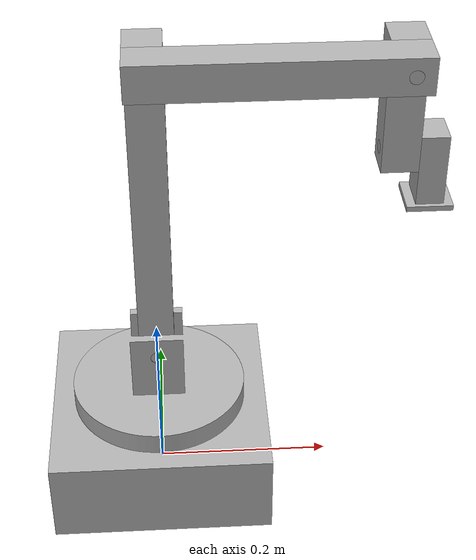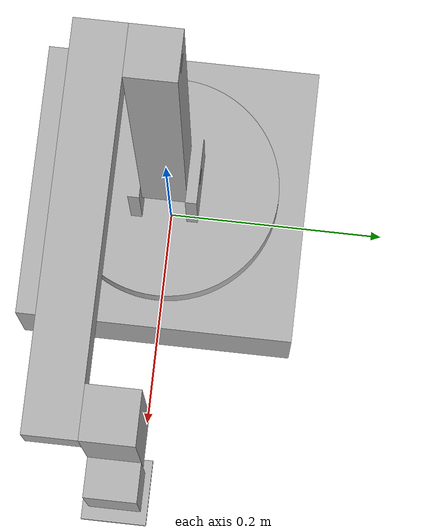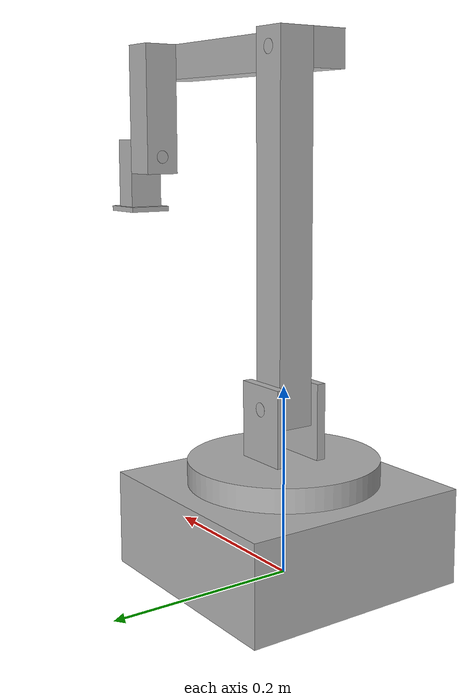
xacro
<?xml version="1.0"?>
<robot name="robotic_arm1" xmlns:xacro="http://www.ros.org/wiki/xacro">

    <xacro:include filename="$(find robotic_arm_description1)/urdf/materials.xacro" />

    <!-- Include Gazebo Parameters -->
    <xacro:include filename="$(find robotic_arm_description1)/urdf/robotic_arm1_gazebo.xacro" />

     <!-- Include ros2_control Plugins -->
     <xacro:include filename="$(find robotic_arm_description1)/urdf/robotic_arm1_ros2_control.xacro" />

    <!-- Useful XACRO Variables (Properties) -->
    <xacro:property name="PI" value="3.14159265359" />
    <xacro:property name="effort" value="30.0" />
    <xacro:property name="velocity" value="10.0" />

    <!-- Useful Macros -->
    <xacro:macro name="default_inertial" params="mass">
        <inertial>
            <origin xyz="0 0 0" rpy="0 0 0" />
            <mass value="${mass}" />
            <inertia ixx="1.0" ixy="0.0" ixz="0.0"
                iyy="1.0" iyz="0.0"
                izz="1.0" />
        </inertial>
    </xacro:macro>

    <xacro:macro name="default_transmission" params="number">
        <transmission name="transmission_${number}">
            <plugin>transmission_interface/SimpleTransmission</plugin>
            <actuator name="motor_${number}" role="actuator1" />
            <joint name="joint_${number}" role="joint1">
                <mechanical_reduction>1.0</mechanical_reduction>
            </joint>
        </transmission>
    </xacro:macro>

    <!-- Links -->
    <link name="world" />

    <link name="base_link">
        <xacro:default_inertial mass="1.0" />
        <visual>
            <origin xyz="0 0 0" rpy="0 0 0" />
            <geometry>
                <mesh filename="package://robotic_arm_description1/meshes/base_link.stl"
                    scale="0.001 0.001 0.001" />
            </geometry>
            <material name="silver" />
        </visual>
        <collision>
            <origin xyz="0 0 0" rpy="0 0 0" />
            <geometry>
                <mesh filename="package://robotic_arm_description1/meshes/base_link.stl"
                    scale="0.001 0.001 0.001" />
            </geometry>
        </collision>
    </link>

    <link name="base_plate">
        <xacro:default_inertial mass=".5" />
        <visual>
            <origin xyz="-0.0 -0.0 -0.1" rpy="0 0 0" />
            <geometry>
                <mesh filename="package://robotic_arm_description1/meshes/link1_1.stl"
                    scale="0.001 0.001 0.001" />
            </geometry>
            <material name="silver" />
        </visual>
        <collision>
            <origin xyz="-0.0 -0.0 -0.1" rpy="0 0 0" />
            <geometry>
                <mesh filename="package://robotic_arm_description1/meshes/link1_1.stl"
                    scale="0.001 0.001 0.001" />
            </geometry>
        </collision>
    </link>

    <link name="link1">
        <xacro:default_inertial mass="0.5" />
        <visual>
            <origin xyz="-0.0 0.03 -0.18" rpy="0 0 0" />
            <geometry>
                <mesh filename="package://robotic_arm_description1/meshes/link2_1.stl"
                    scale="0.001 0.001 0.001" />
            </geometry>
            <material name="silver" />
        </visual>
        <collision>
            <origin xyz="-0.0 0.03 -0.18" rpy="0 0 0" />
            <geometry>
                <mesh filename="package://robotic_arm_description1/meshes/link2_1.stl"
                    scale="0.001 0.001 0.001" />
            </geometry>
        </collision>
    </link>

    <link name="link2">
        <xacro:default_inertial mass="0.5" />
        <visual>
            <origin xyz="-0.0 -0.02 -0.54" rpy="0 0 0" />
            <geometry>
                <mesh filename="package://robotic_arm_description1/meshes/link3_1.stl"
                    scale="0.001 0.001 0.001" />
            </geometry>
            <material name="silver" />
        </visual>
        <collision>
            <origin xyz="-0.0 -0.02 -0.54" rpy="0 0 0" />
            <geometry>
                <mesh filename="package://robotic_arm_description1/meshes/link3_1.stl"
                    scale="0.001 0.001 0.001" />
            </geometry>
        </collision>
    </link>

    <link name="link3">
        <xacro:default_inertial mass="0.4" />
        <visual>
            <origin xyz="-0.26 0.06 -0.54" rpy="0 0 0" />
            <geometry>
                <mesh filename="package://robotic_arm_description1/meshes/link4_1.stl"
                    scale="0.001 0.001 0.001" />
            </geometry>
            <material name="silver" />
        </visual>
        <collision>
            <origin xyz="-0.26 0.06 -0.54" rpy="0 0 0" />
            <geometry>
                <mesh filename="package://robotic_arm_description1/meshes/link4_1.stl"
                    scale="0.001 0.001 0.001" />
            </geometry>
        </collision>
    </link>

    <link name="link4">
        <xacro:default_inertial mass="0.3" />
        <visual>
            <origin xyz="-0.24 -0.0 -0.43" rpy="0 0 0" />
            <geometry>
                <mesh filename="package://robotic_arm_description1/meshes/link5_1.stl"
                    scale="0.001 0.001 0.001" />
            </geometry>
            <material name="silver" />
        </visual>
        <collision>
            <origin xyz="-0.24 -0.0 -0.43" rpy="0 0 0" />
            <geometry>
                <mesh filename="package://robotic_arm_description1/meshes/link5_1.stl"
                    scale="0.001 0.001 0.001" />
            </geometry>
        </collision>
    </link>

    <link name="gripper">
        <xacro:default_inertial mass="0.2" />

        <visual>
            <origin xyz="-0.295 -0.0 -0.37" rpy="0 0 0" />
            <geometry>
                <mesh filename="package://robotic_arm_description1/meshes/gripper_1.stl"
                    scale="0.001 0.001 0.001" />
            </geometry>
            <material name="silver" />
        </visual>
        <collision>
            <origin xyz="-0.295 -0.0 -0.37" rpy="0 0 0" />
            <geometry>
                <mesh filename="package://robotic_arm_description1/meshes/gripper_1.stl"
                    scale="0.001 0.001 0.001" />
            </geometry>
        </collision>
    </link>

    <!-- Joints -->
    <joint name="virtual_joint" type="fixed">
        <parent link="world" />
        <child link="base_link" />
        <origin xyz="0 0 0" rpy="0 0 0" />
    </joint>

    <joint name="joint_1" type="revolute">
        <origin xyz="0.0 0.0 0.1" rpy="0 0 0" />
        <parent link="base_link" />
        <child link="base_plate" />
        <axis xyz="0.0 0.0 1.0" />
        <limit upper="${PI/2}" lower="-${PI/2}" effort="${effort}" velocity="${velocity}"/>
    </joint>

    <joint name="joint_2" type="revolute">
        <origin xyz="0.0 -0.03 0.08" rpy="0 0 0" />
        <parent link="base_plate" />
        <child link="link1" />
        <axis xyz="0.0 1.0 0.0" />
        <limit upper="${PI/2}" lower="-${PI/4}" effort="${effort}" velocity="${velocity}"/>
    </joint>

    <joint name="joint_3" type="revolute">
        <origin xyz="0.0 0.05 0.36" rpy="0 0 0" />
        <parent link="link1" />
        <child link="link2" />
        <axis xyz="0.0 -1.0 0.0" />
        <limit upper="${PI/2}" lower="-${PI/3}" effort="${effort}" velocity="${velocity}"/>
    </joint>

    <joint name="joint_4" type="revolute">
        <origin xyz="0.26 -0.08 0.0" rpy="0 0 0" />
        <parent link="link2" />
        <child link="link3" />
        <axis xyz="0.0 1.0 0.0" />
        <limit upper="${PI/4}" lower="-2.356194" effort="${effort}" velocity="${velocity}"/>
    </joint>

    <joint name="joint_5" type="revolute">
        <origin xyz="-0.02 0.06 -0.11" rpy="0 0 0" />
        <parent link="link3" />
        <child link="link4" />
        <axis xyz="1.0 0.0 0.0" />
        <limit upper="${PI/2}" lower="-${PI/2}" effort="${effort}" velocity="${velocity}"/>
    </joint>

    <joint name="joint_6" type="revolute">
        <origin xyz="0.055 0.0 -0.06" rpy="0 0 0" />
        <parent link="link4" />
        <child link="gripper" />
        <axis xyz="0.0 0.0 -1.0" />
        <limit upper="4.712389" lower="0.0" effort="${effort}" velocity="${velocity}"/>
    </joint>

    <!-- Transmissions-->
    <xacro:default_transmission number="1" />
    <xacro:default_transmission number="2" />
    <xacro:default_transmission number="3" />
    <xacro:default_transmission number="4" />
    <xacro:default_transmission number="5" />
    <xacro:default_transmission number="6" />

</robot>

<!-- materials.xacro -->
<robot name="robotic_arm1" xmlns:xacro="http://www.ros.org/wiki/xacro" >

<material name="silver">
  <color rgba="0.700 0.700 0.700 1.000"/>
</material>

</robot>
